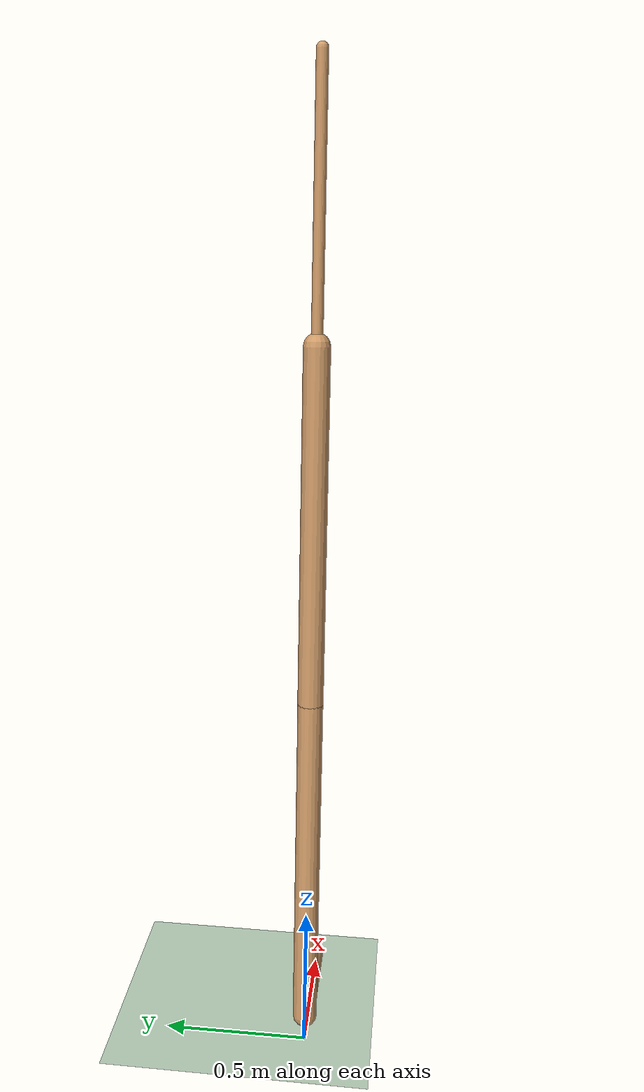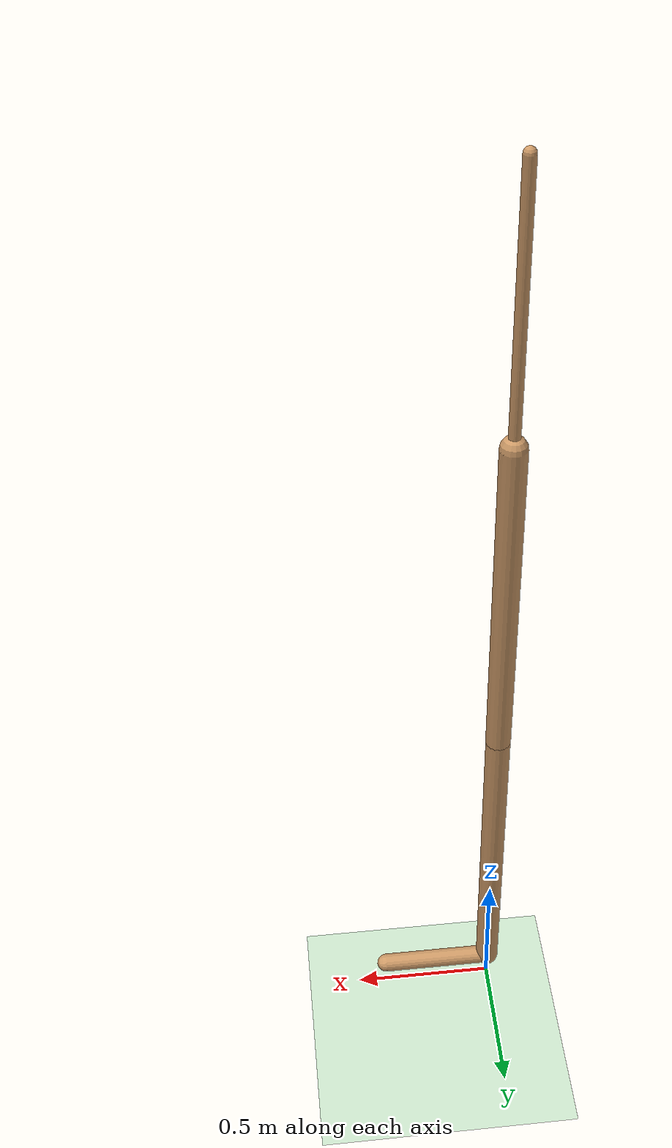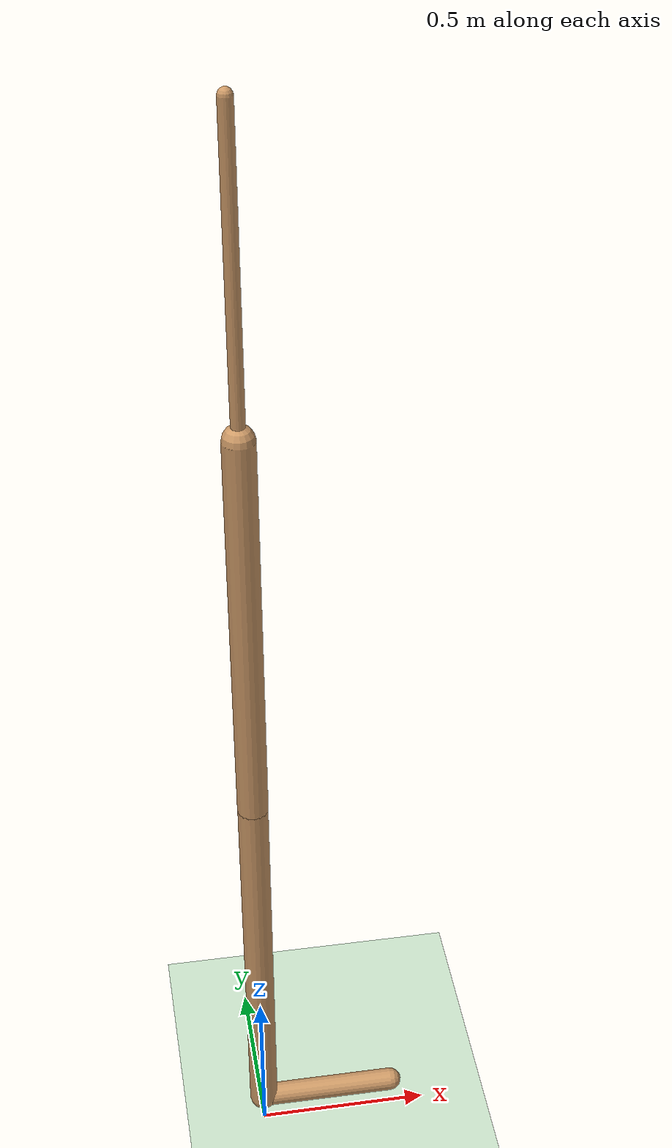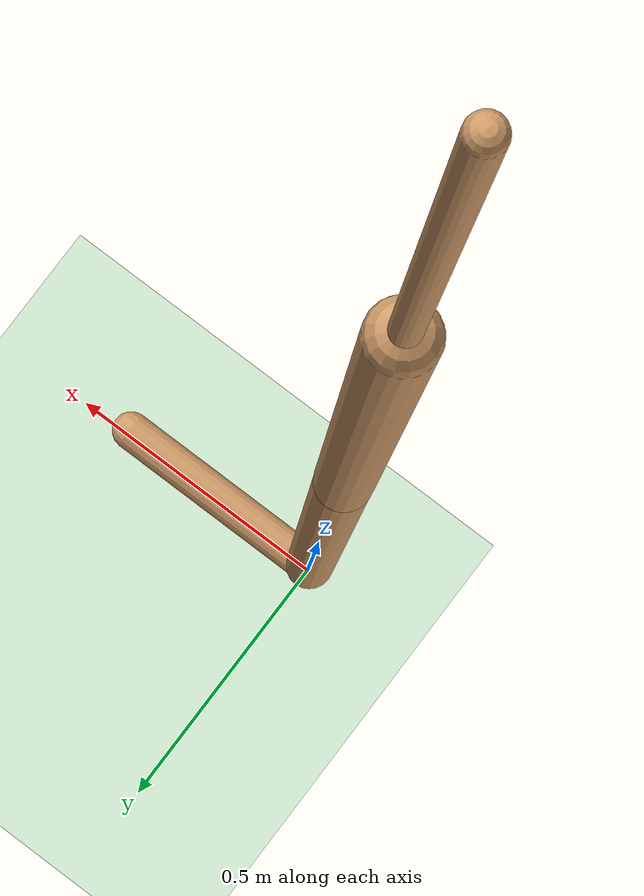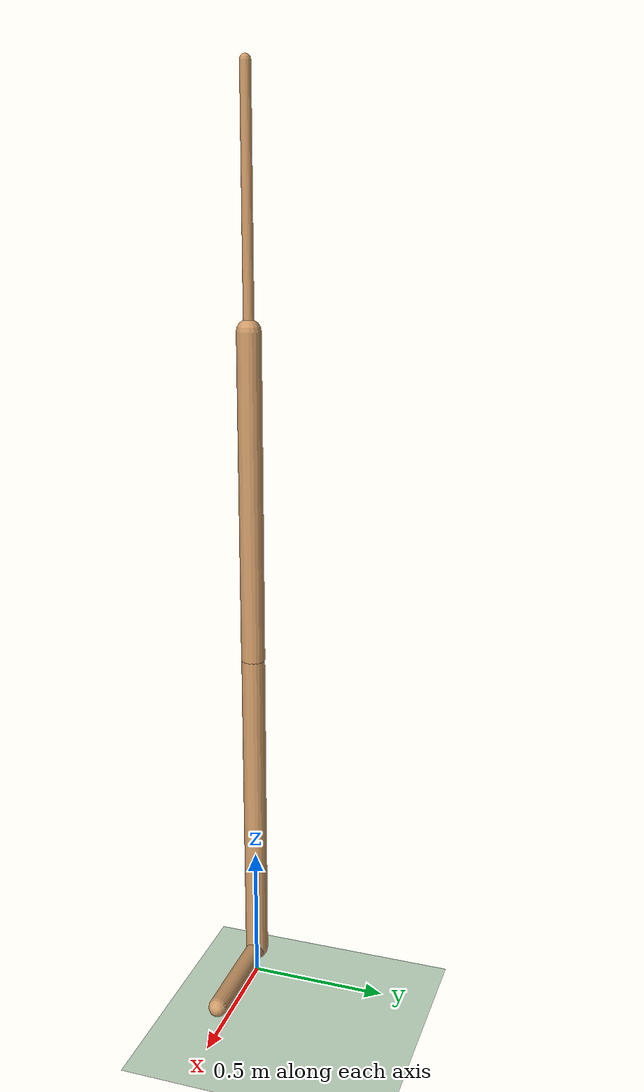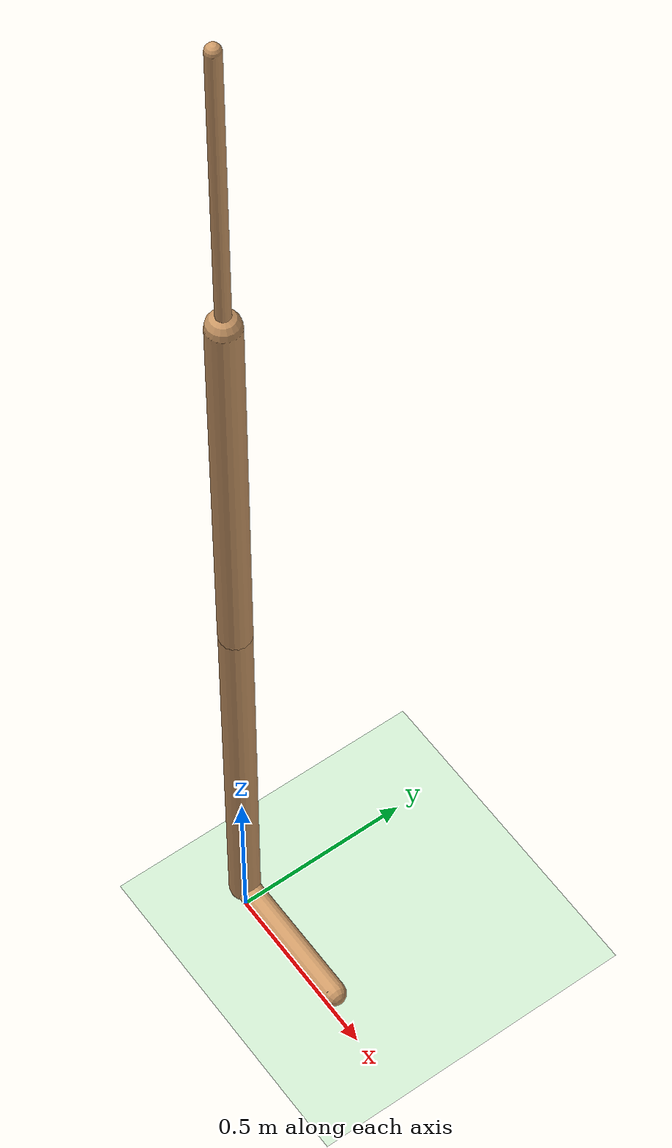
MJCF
<mujoco model="walker2d">
  <compiler angle="degree" inertiafromgeom="true" />
  <default>
    <joint armature="0.01" damping=".1" limited="true" />
    <geom conaffinity="0" condim="3" contype="1" density="1000" friction=".7 .1 .1" rgba="0.8 0.6 .4 1" />
  </default>
  <option integrator="RK4" timestep="0.002" />
  <worldbody>
    <light cutoff="100" diffuse="1 1 1" dir="-0 0 -1.3" directional="true" exponent="1" pos="0 0 1.3" specular=".1 .1 .1" />
    <geom conaffinity="1" condim="3" name="floor" pos="0 0 0" rgba="0.8 0.9 0.8 1" size="40 40 40" type="plane" material="MatPlane" />
    <body name="torso" pos="0 0 2.8686679363250733">
      <camera name="track" mode="trackcom" pos="0 -5 -1.25" xyaxes="1 0 0 0 0 1" />
      <joint armature="0" axis="1 0 0" damping="0" limited="false" name="rootx" pos="0 0 -1.25" stiffness="0" type="slide" />
      <joint armature="0" axis="0 0 1" damping="0" limited="false" name="rootz" pos="0 0 -1.25" ref="1.25" stiffness="0" type="slide" />
      <joint armature="0" axis="0 1 0" damping="0" limited="false" name="rooty" pos="0 0 0" stiffness="0" type="hinge" />
      <geom friction="0.9" name="torso_geom" size="0.01838817074894905 0.4180028438568115" type="capsule" />
      <body name="thigh" pos="0 0 -0.4180028438568115">
        <joint axis="0 -1 0" name="thigh_joint" pos="0 0 0" range="-150 0" type="hinge" />
        <site name="torso_thigh_site" pos="0 0 0" size="0.01" type="sphere" rgba="1 0 0 0.5" />
        <geom friction="0.9" pos="0 0 -0.5802066326141357" name="thigh_geom" size="0.04248201847076416 0.5802066326141357" type="capsule" />
        <body name="leg" pos="0 0 -1.7555391788482666">
          <joint axis="0 -1 0" name="leg_joint" pos="0 0 0.5951259136199951" range="-150 0" type="hinge" />
          <site name="thigh_leg_site" pos="0 0 0.25" size="0.01" type="sphere" rgba="1 0 0 0.5" />
          <geom friction="0.9" name="leg_geom" size="0.0418672040104866 0.5951259136199951" type="capsule" />
          <body name="foot" pos="0.3953361213207245 0 -0.6951259136199951">
            <joint axis="0 -1 0" name="foot_joint" pos="-0.3953361213207245 0 0.1" range="-45 45" type="hinge" />
            <site name="leg_foot_site" pos="-0.2 0 0.1" size="0.01" type="sphere" rgba="1 0 0 0.5" />
            <geom friction="0.9" pos="-0.19766806066036224 0 0.1" quat="0.70710678118654757 0 -0.70710678118654746 0" name="foot_geom" size="0.03403693810105324 0.19766806066036224" type="capsule" />
          </body>
        </body>
      </body>

      <body name="thigh_left" pos="0 0 -0.4180028438568115">
        <joint axis="0 -1 0" name="thigh_left_joint" pos="0 0 0" range="-150 0" type="hinge" />
        <site name="torso_thigh_left_site" pos="0 0 0" size="0.01" type="sphere" rgba="1 0 0 0.5" />
        <geom friction="0.9" name="thigh_left_geom" rgba=".7 .3 .6 1" size="0.04248201847076416 0.5802066326141357" pos="0 0 -0.5802066326141357" type="capsule" />
        <body name="leg_left" pos="0 0 -1.7555391788482666">
          <joint axis="0 -1 0" name="leg_left_joint" pos="0 0 0.5951259136199951" range="-150 0" type="hinge" />
          <site name="thigh_leg_left_site" pos="0 0 0.25" size="0.01" type="sphere" rgba="1 0 0 0.5" />
          <geom friction="0.9" name="leg_left_geom" rgba=".7 .3 .6 1" size="0.0418672040104866 0.5951259136199951" type="capsule" />
          <body name="foot_left" pos="0.3953361213207245 0 -0.6951259136199951">
            <joint axis="0 -1 0" name="foot_left_joint" pos="-0.3953361213207245 0 0.1" range="-45 45" type="hinge" />
            <site name="leg_foot_left_site" pos="-0.2 0 0.1" size="0.01" type="sphere" rgba="1 0 0 0.5" />
            <geom friction="1.9" name="foot_left_geom" rgba=".7 .3 .6 1" size="0.03403693810105324 0.19766806066036224" pos="-0.19766806066036224 0 0.1" type="capsule" quat="0.70710678118654757 0 -0.70710678118654746 0" />
          </body>
        </body>
      </body>
    </body>
  </worldbody>
  <actuator>

    <motor ctrllimited="true" ctrlrange="-1.0 1.0" gear="186.15317556369993" joint="thigh_joint" />
    <motor ctrllimited="true" ctrlrange="-1.0 1.0" gear="260.7935146080196" joint="leg_joint" />
    <motor ctrllimited="true" ctrlrange="-1.0 1.0" gear="63.61140240462938" joint="foot_joint" />
    <motor ctrllimited="true" ctrlrange="-1.0 1.0" gear="186.15317556369993" joint="thigh_left_joint" />
    <motor ctrllimited="true" ctrlrange="-1.0 1.0" gear="260.7935146080196" joint="leg_left_joint" />
    <motor ctrllimited="true" ctrlrange="-1.0 1.0" gear="63.61140240462938" joint="foot_left_joint" />

  </actuator>
    <asset>
        <texture type="skybox" builtin="gradient" rgb1=".4 .5 .6" rgb2="0 0 0" width="100" height="100" />
        <texture builtin="flat" height="1278" mark="cross" markrgb="1 1 1" name="texgeom" random="0.01" rgb1="0.8 0.6 0.4" rgb2="0.8 0.6 0.4" type="cube" width="127" />
        <texture builtin="checker" height="100" name="texplane" rgb1="0 0 0" rgb2="0.8 0.8 0.8" type="2d" width="100" />
        <material name="MatPlane" reflectance="0.5" shininess="1" specular="1" texrepeat="60 60" texture="texplane" />
        <material name="geom" texture="texgeom" texuniform="true" />
    </asset>

  <sensor>
    <force site="torso_thigh_site" name="torso_thigh_sensor" />
    <force site="thigh_leg_site" name="thigh_leg_sensor" />
    <force site="leg_foot_site" name="leg_foot_sensor" />
    <force site="torso_thigh_left_site" name="torso_thigh_left_sensor" />
    <force site="thigh_leg_left_site" name="thigh_leg_left_sensor" />
    <force site="leg_foot_left_site" name="leg_foot_left_sensor" />
  </sensor>
</mujoco>
